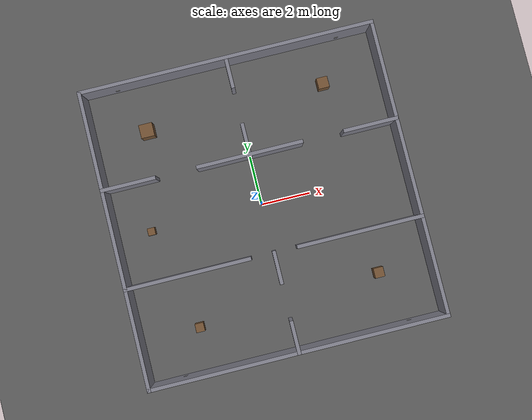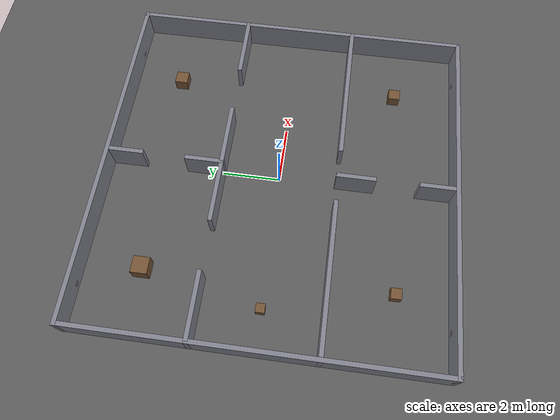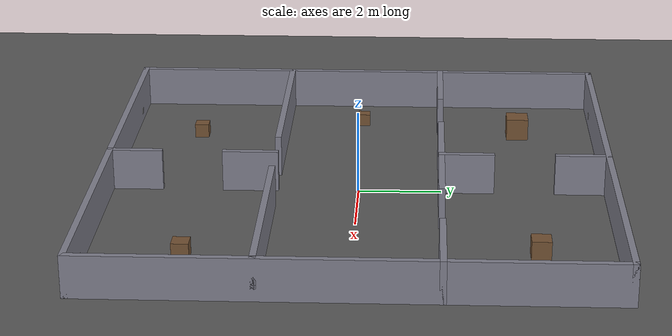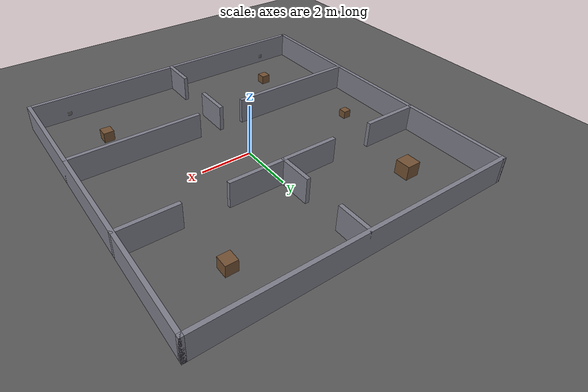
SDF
<?xml version="1.0"?>
<!-- Auto-generated by scripts/generate_rescue_arena.py — do not edit by hand. -->
<sdf version='1.8'>
    <world name='rescue_arena'>
        <physics name='1ms' type='ignored'>
            <max_step_size>0.01</max_step_size>
            <real_time_factor>1</real_time_factor>
            <real_time_update_rate>70</real_time_update_rate>
        </physics>
        <plugin name='ignition::gazebo::systems::Physics' filename='ignition-gazebo-physics-system' />
        <plugin name='ignition::gazebo::systems::UserCommands' filename='ignition-gazebo-user-commands-system' />
        <plugin name='ignition::gazebo::systems::SceneBroadcaster' filename='ignition-gazebo-scene-broadcaster-system' />
        <plugin name='ignition::gazebo::systems::Contact' filename='ignition-gazebo-contact-system' />
        <light name='sun' type='directional'>
            <cast_shadows>0</cast_shadows>
            <pose>0 0 10 0 0 0</pose>
            <diffuse>0.9 0.9 0.9 1</diffuse>
            <specular>0.1 0.1 0.1 1</specular>
            <attenuation><range>1000</range><constant>0.9</constant><linear>0.01</linear><quadratic>0.001</quadratic></attenuation>
            <direction>-0.4 0.2 -0.9</direction>
        </light>
        <gravity>0 0 -9.8</gravity>
        <scene>
            <ambient>0.5 0.5 0.5 1</ambient>
            <background>0.7 0.7 0.75 1</background>
            <shadows>0</shadows>
        </scene>
        <model name='ground_plane'>
            <static>1</static>
            <link name='link'>
                <collision name='collision'>
                    <geometry><plane><normal>0 0 1</normal><size>100 100</size></plane></geometry>
                </collision>
                <visual name='visual'>
                    <geometry><plane><normal>0 0 1</normal><size>100 100</size></plane></geometry>
                    <material><ambient>0.3 0.3 0.3 1</ambient><diffuse>0.35 0.35 0.35 1</diffuse></material>
                </visual>
            </link>
        </model>
        <model name='wall_0'>
            <static>1</static>
            <pose>0.000 6.000 0.500 0 0 0</pose>
            <link name='link'>
                <collision name='collision'>
                    <geometry><box><size>12.150 0.150 1.000</size></box></geometry>
                </collision>
                <visual name='visual'>
                    <geometry><box><size>12.150 0.150 1.000</size></box></geometry>
                    <material>
                        <ambient>0.5 0.5 0.55 1</ambient><diffuse>0.5 0.5 0.55 1</diffuse>
                    </material>
                </visual>
            </link>
        </model>
        <model name='wall_1'>
            <static>1</static>
            <pose>0.000 -6.000 0.500 0 0 0</pose>
            <link name='link'>
                <collision name='collision'>
                    <geometry><box><size>12.150 0.150 1.000</size></box></geometry>
                </collision>
                <visual name='visual'>
                    <geometry><box><size>12.150 0.150 1.000</size></box></geometry>
                    <material>
                        <ambient>0.5 0.5 0.55 1</ambient><diffuse>0.5 0.5 0.55 1</diffuse>
                    </material>
                </visual>
            </link>
        </model>
        <model name='wall_2'>
            <static>1</static>
            <pose>6.000 0.000 0.500 0 0 0</pose>
            <link name='link'>
                <collision name='collision'>
                    <geometry><box><size>0.150 12.150 1.000</size></box></geometry>
                </collision>
                <visual name='visual'>
                    <geometry><box><size>0.150 12.150 1.000</size></box></geometry>
                    <material>
                        <ambient>0.5 0.5 0.55 1</ambient><diffuse>0.5 0.5 0.55 1</diffuse>
                    </material>
                </visual>
            </link>
        </model>
        <model name='wall_3'>
            <static>1</static>
            <pose>-6.000 0.000 0.500 0 0 0</pose>
            <link name='link'>
                <collision name='collision'>
                    <geometry><box><size>0.150 12.150 1.000</size></box></geometry>
                </collision>
                <visual name='visual'>
                    <geometry><box><size>0.150 12.150 1.000</size></box></geometry>
                    <material>
                        <ambient>0.5 0.5 0.55 1</ambient><diffuse>0.5 0.5 0.55 1</diffuse>
                    </material>
                </visual>
            </link>
        </model>
        <model name='wall_4'>
            <static>1</static>
            <pose>-4.950 2.000 0.500 0 0 0</pose>
            <link name='link'>
                <collision name='collision'>
                    <geometry><box><size>2.250 0.150 1.000</size></box></geometry>
                </collision>
                <visual name='visual'>
                    <geometry><box><size>2.250 0.150 1.000</size></box></geometry>
                    <material>
                        <ambient>0.5 0.5 0.55 1</ambient><diffuse>0.5 0.5 0.55 1</diffuse>
                    </material>
                </visual>
            </link>
        </model>
        <model name='wall_5'>
            <static>1</static>
            <pose>0.000 2.000 0.500 0 0 0</pose>
            <link name='link'>
                <collision name='collision'>
                    <geometry><box><size>4.350 0.150 1.000</size></box></geometry>
                </collision>
                <visual name='visual'>
                    <geometry><box><size>4.350 0.150 1.000</size></box></geometry>
                    <material>
                        <ambient>0.5 0.5 0.55 1</ambient><diffuse>0.5 0.5 0.55 1</diffuse>
                    </material>
                </visual>
            </link>
        </model>
        <model name='wall_6'>
            <static>1</static>
            <pose>4.950 2.000 0.500 0 0 0</pose>
            <link name='link'>
                <collision name='collision'>
                    <geometry><box><size>2.250 0.150 1.000</size></box></geometry>
                </collision>
                <visual name='visual'>
                    <geometry><box><size>2.250 0.150 1.000</size></box></geometry>
                    <material>
                        <ambient>0.5 0.5 0.55 1</ambient><diffuse>0.5 0.5 0.55 1</diffuse>
                    </material>
                </visual>
            </link>
        </model>
        <model name='wall_7'>
            <static>1</static>
            <pose>-3.500 -2.000 0.500 0 0 0</pose>
            <link name='link'>
                <collision name='collision'>
                    <geometry><box><size>5.150 0.150 1.000</size></box></geometry>
                </collision>
                <visual name='visual'>
                    <geometry><box><size>5.150 0.150 1.000</size></box></geometry>
                    <material>
                        <ambient>0.5 0.5 0.55 1</ambient><diffuse>0.5 0.5 0.55 1</diffuse>
                    </material>
                </visual>
            </link>
        </model>
        <model name='wall_8'>
            <static>1</static>
            <pose>3.500 -2.000 0.500 0 0 0</pose>
            <link name='link'>
                <collision name='collision'>
                    <geometry><box><size>5.150 0.150 1.000</size></box></geometry>
                </collision>
                <visual name='visual'>
                    <geometry><box><size>5.150 0.150 1.000</size></box></geometry>
                    <material>
                        <ambient>0.5 0.5 0.55 1</ambient><diffuse>0.5 0.5 0.55 1</diffuse>
                    </material>
                </visual>
            </link>
        </model>
        <model name='wall_9'>
            <static>1</static>
            <pose>0.000 2.600 0.500 0 0 0</pose>
            <link name='link'>
                <collision name='collision'>
                    <geometry><box><size>0.150 1.350 1.000</size></box></geometry>
                </collision>
                <visual name='visual'>
                    <geometry><box><size>0.150 1.350 1.000</size></box></geometry>
                    <material>
                        <ambient>0.5 0.5 0.55 1</ambient><diffuse>0.5 0.5 0.55 1</diffuse>
                    </material>
                </visual>
            </link>
        </model>
        <model name='wall_10'>
            <static>1</static>
            <pose>0.000 5.400 0.500 0 0 0</pose>
            <link name='link'>
                <collision name='collision'>
                    <geometry><box><size>0.150 1.350 1.000</size></box></geometry>
                </collision>
                <visual name='visual'>
                    <geometry><box><size>0.150 1.350 1.000</size></box></geometry>
                    <material>
                        <ambient>0.5 0.5 0.55 1</ambient><diffuse>0.5 0.5 0.55 1</diffuse>
                    </material>
                </visual>
            </link>
        </model>
        <model name='wall_11'>
            <static>1</static>
            <pose>0.000 -5.400 0.500 0 0 0</pose>
            <link name='link'>
                <collision name='collision'>
                    <geometry><box><size>0.150 1.350 1.000</size></box></geometry>
                </collision>
                <visual name='visual'>
                    <geometry><box><size>0.150 1.350 1.000</size></box></geometry>
                    <material>
                        <ambient>0.5 0.5 0.55 1</ambient><diffuse>0.5 0.5 0.55 1</diffuse>
                    </material>
                </visual>
            </link>
        </model>
        <model name='wall_12'>
            <static>1</static>
            <pose>0.000 -2.600 0.500 0 0 0</pose>
            <link name='link'>
                <collision name='collision'>
                    <geometry><box><size>0.150 1.350 1.000</size></box></geometry>
                </collision>
                <visual name='visual'>
                    <geometry><box><size>0.150 1.350 1.000</size></box></geometry>
                    <material>
                        <ambient>0.5 0.5 0.55 1</ambient><diffuse>0.5 0.5 0.55 1</diffuse>
                    </material>
                </visual>
            </link>
        </model>
        <model name='rubble_0'>
            <static>1</static>
            <pose>3.600 4.200 0.225 0 0 0</pose>
            <link name='link'>
                <collision name='collision'>
                    <geometry><box><size>0.450 0.450 0.450</size></box></geometry>
                </collision>
                <visual name='visual'>
                    <geometry><box><size>0.450 0.450 0.450</size></box></geometry>
                    <material>
                        <ambient>0.45 0.32 0.2 1</ambient><diffuse>0.45 0.32 0.2 1</diffuse>
                    </material>
                </visual>
            </link>
        </model>
        <model name='rubble_1'>
            <static>1</static>
            <pose>-3.800 4.000 0.275 0 0 0</pose>
            <link name='link'>
                <collision name='collision'>
                    <geometry><box><size>0.550 0.550 0.550</size></box></geometry>
                </collision>
                <visual name='visual'>
                    <geometry><box><size>0.550 0.550 0.550</size></box></geometry>
                    <material>
                        <ambient>0.45 0.32 0.2 1</ambient><diffuse>0.45 0.32 0.2 1</diffuse>
                    </material>
                </visual>
            </link>
        </model>
        <model name='rubble_2'>
            <static>1</static>
            <pose>-3.600 -4.200 0.175 0 0 0</pose>
            <link name='link'>
                <collision name='collision'>
                    <geometry><box><size>0.350 0.350 0.350</size></box></geometry>
                </collision>
                <visual name='visual'>
                    <geometry><box><size>0.350 0.350 0.350</size></box></geometry>
                    <material>
                        <ambient>0.45 0.32 0.2 1</ambient><diffuse>0.45 0.32 0.2 1</diffuse>
                    </material>
                </visual>
            </link>
        </model>
        <model name='rubble_3'>
            <static>1</static>
            <pose>3.900 -3.800 0.200 0 0 0</pose>
            <link name='link'>
                <collision name='collision'>
                    <geometry><box><size>0.400 0.400 0.400</size></box></geometry>
                </collision>
                <visual name='visual'>
                    <geometry><box><size>0.400 0.400 0.400</size></box></geometry>
                    <material>
                        <ambient>0.45 0.32 0.2 1</ambient><diffuse>0.45 0.32 0.2 1</diffuse>
                    </material>
                </visual>
            </link>
        </model>
        <model name='rubble_4'>
            <static>1</static>
            <pose>-4.600 0.000 0.150 0 0 0</pose>
            <link name='link'>
                <collision name='collision'>
                    <geometry><box><size>0.300 0.300 0.300</size></box></geometry>
                </collision>
                <visual name='visual'>
                    <geometry><box><size>0.300 0.300 0.300</size></box></geometry>
                    <material>
                        <ambient>0.45 0.32 0.2 1</ambient><diffuse>0.45 0.32 0.2 1</diffuse>
                    </material>
                </visual>
            </link>
        </model>
        <!-- AprilTag victims (one per room) -->
        <include>
            <uri>model://apriltag_36h11_00</uri>
            <name>victim_0</name>
            <pose>4.6000 5.9240 0.2800 1.5708 0.0000 0.0000</pose>
        </include>
        <include>
            <uri>model://apriltag_36h11_01</uri>
            <name>victim_1</name>
            <pose>-4.6000 -5.9240 0.2800 -1.5708 0.0000 0.0000</pose>
        </include>
        <include>
            <uri>model://apriltag_36h11_02</uri>
            <name>victim_2</name>
            <pose>-4.6000 5.9240 0.2800 1.5708 0.0000 0.0000</pose>
        </include>
        <include>
            <uri>model://apriltag_36h11_03</uri>
            <name>victim_3</name>
            <pose>4.6000 -5.9240 0.2800 -1.5708 0.0000 0.0000</pose>
        </include>
    </world>
</sdf>

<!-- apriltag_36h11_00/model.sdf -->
<sdf version="1.8">
  <model name="apriltag_36h11_00">
    <static>true</static>
    <link name="link">
      <visual name="c0000">
        <pose>-0.072000 0.072000 0 0 0 0</pose>
        <geometry><box><size>0.015950 0.015950 0.002</size></box></geometry>
        <material>
          <ambient>1 1 1 1</ambient>
          <diffuse>1 1 1 1</diffuse>
          <specular>0 0 0 1</specular>
        </material>
      </visual>
      <visual name="c0001">
        <pose>-0.056000 0.072000 0 0 0 0</pose>
        <geometry><box><size>0.015950 0.015950 0.002</size></box></geometry>
        <material>
          <ambient>1 1 1 1</ambient>
          <diffuse>1 1 1 1</diffuse>
          <specular>0 0 0 1</specular>
        </material>
      </visual>
      <visual name="c0002">
        <pose>-0.040000 0.072000 0 0 0 0</pose>
        <geometry><box><size>0.015950 0.015950 0.002</size></box></geometry>
        <material>
          <ambient>1 1 1 1</ambient>
          <diffuse>1 1 1 1</diffuse>
          <specular>0 0 0 1</specular>
        </material>
      </visual>
      <visual name="c0003">
        <pose>-0.024000 0.072000 0 0 0 0</pose>
        <geometry><box><size>0.015950 0.015950 0.002</size></box></geometry>
        <material>
          <ambient>1 1 1 1</ambient>
          <diffuse>1 1 1 1</diffuse>
          <specular>0 0 0 1</specular>
        </material>
      </visual>
      <visual name="c0004">
        <pose>-0.008000 0.072000 0 0 0 0</pose>
        <geometry><box><size>0.015950 0.015950 0.002</size></box></geometry>
        <material>
          <ambient>1 1 1 1</ambient>
          <diffuse>1 1 1 1</diffuse>
          <specular>0 0 0 1</specular>
        </material>
      </visual>
      <visual name="c0005">
        <pose>0.008000 0.072000 0 0 0 0</pose>
        <geometry><box><size>0.015950 0.015950 0.002</size></box></geometry>
        <material>
          <ambient>1 1 1 1</ambient>
          <diffuse>1 1 1 1</diffuse>
          <specular>0 0 0 1</specular>
        </material>
      </visual>
      <visual name="c0006">
        <pose>0.024000 0.072000 0 0 0 0</pose>
        <geometry><box><size>0.015950 0.015950 0.002</size></box></geometry>
        <material>
          <ambient>1 1 1 1</ambient>
          <diffuse>1 1 1 1</diffuse>
          <specular>0 0 0 1</specular>
        </material>
      </visual>
      <visual name="c0007">
        <pose>0.040000 0.072000 0 0 0 0</pose>
        <geometry><box><size>0.015950 0.015950 0.002</size></box></geometry>
        <material>
          <ambient>1 1 1 1</ambient>
          <diffuse>1 1 1 1</diffuse>
          <specular>0 0 0 1</specular>
        </material>
      </visual>
      <visual name="c0008">
        <pose>0.056000 0.072000 0 0 0 0</pose>
        <geometry><box><size>0.015950 0.015950 0.002</size></box></geometry>
        <material>
          <ambient>1 1 1 1</ambient>
          <diffuse>1 1 1 1</diffuse>
          <specular>0 0 0 1</specular>
        </material>
      </visual>
      <visual name="c0009">
        <pose>0.072000 0.072000 0 0 0 0</pose>
        <geometry><box><size>0.015950 0.015950 0.002</size></box></geometry>
        <material>
          <ambient>1 1 1 1</ambient>
          <diffuse>1 1 1 1</diffuse>
          <specular>0 0 0 1</specular>
        </material>
      </visual>
      <visual name="c0100">
        <pose>-0.072000 0.056000 0 0 0 0</pose>
        <geometry><box><size>0.015950 0.015950 0.002</size></box></geometry>
        <material>
          <ambient>1 1 1 1</ambient>
          <diffuse>1 1 1 1</diffuse>
          <specular>0 0 0 1</specular>
        </material>
      </visual>
      <visual name="c0101">
        <pose>-0.056000 0.056000 0 0 0 0</pose>
        <geometry><box><size>0.015950 0.015950 0.002</size></box></geometry>
        <material>
          <ambient>0 0 0 1</ambient>
          <diffuse>0 0 0 1</diffuse>
          <specular>0 0 0 1</specular>
        </material>
      </visual>
      <visual name="c0102">
        <pose>-0.040000 0.056000 0 0 0 0</pose>
        <geometry><box><size>0.015950 0.015950 0.002</size></box></geometry>
        <material>
          <ambient>0 0 0 1</ambient>
          <diffuse>0 0 0 1</diffuse>
          <specular>0 0 0 1</specular>
        </material>
      </visual>
      <visual name="c0103">
        <pose>-0.024000 0.056000 0 0 0 0</pose>
        <geometry><box><size>0.015950 0.015950 0.002</size></box></geometry>
        <material>
          <ambient>0 0 0 1</ambient>
          <diffuse>0 0 0 1</diffuse>
          <specular>0 0 0 1</specular>
        </material>
      </visual>
      <visual name="c0104">
        <pose>-0.008000 0.056000 0 0 0 0</pose>
        <geometry><box><size>0.015950 0.015950 0.002</size></box></geometry>
        <material>
          <ambient>0 0 0 1</ambient>
          <diffuse>0 0 0 1</diffuse>
          <specular>0 0 0 1</specular>
        </material>
      </visual>
      <visual name="c0105">
        <pose>0.008000 0.056000 0 0 0 0</pose>
        <geometry><box><size>0.015950 0.015950 0.002</size></box></geometry>
        <material>
          <ambient>0 0 0 1</ambient>
          <diffuse>0 0 0 1</diffuse>
          <specular>0 0 0 1</specular>
        </material>
      </visual>
      <visual name="c0106">
        <pose>0.024000 0.056000 0 0 0 0</pose>
        <geometry><box><size>0.015950 0.015950 0.002</size></box></geometry>
        <material>
          <ambient>0 0 0 1</ambient>
          <diffuse>0 0 0 1</diffuse>
          <specular>0 0 0 1</specular>
        </material>
      </visual>
      <visual name="c0107">
        <pose>0.040000 0.056000 0 0 0 0</pose>
        <geometry><box><size>0.015950 0.015950 0.002</size></box></geometry>
        <material>
          <ambient>0 0 0 1</ambient>
          <diffuse>0 0 0 1</diffuse>
          <specular>0 0 0 1</specular>
        </material>
      </visual>
      <visual name="c0108">
        <pose>0.056000 0.056000 0 0 0 0</pose>
        <geometry><box><size>0.015950 0.015950 0.002</size></box></geometry>
        <material>
          <ambient>0 0 0 1</ambient>
          <diffuse>0 0 0 1</diffuse>
          <specular>0 0 0 1</specular>
        </material>
      </visual>
      <visual name="c0109">
        <pose>0.072000 0.056000 0 0 0 0</pose>
        <geometry><box><size>0.015950 0.015950 0.002</size></box></geometry>
        <material>
          <ambient>1 1 1 1</ambient>
          <diffuse>1 1 1 1</diffuse>
          <specular>0 0 0 1</specular>
        </material>
      </visual>
      <visual name="c0200">
        <pose>-0.072000 0.040000 0 0 0 0</pose>
        <geometry><box><size>0.015950 0.015950 0.002</size></box></geometry>
        <material>
          <ambient>1 1 1 1</ambient>
          <diffuse>1 1 1 1</diffuse>
          <specular>0 0 0 1</specular>
        </material>
      </visual>
      <visual name="c0201">
        <pose>-0.056000 0.040000 0 0 0 0</pose>
        <geometry><box><size>0.015950 0.015950 0.002</size></box></geometry>
        <material>
          <ambient>0 0 0 1</ambient>
          <diffuse>0 0 0 1</diffuse>
          <specular>0 0 0 1</specular>
        </material>
      </visual>
      <visual name="c0202">
        <pose>-0.040000 0.040000 0 0 0 0</pose>
        <geometry><box><size>0.015950 0.015950 0.002</size></box></geometry>
        <material>
          <ambient>0 0 0 1</ambient>
          <diffuse>0 0 0 1</diffuse>
          <specular>0 0 0 1</specular>
        </material>
      </visual>
      <visual name="c0203">
        <pose>-0.024000 0.040000 0 0 0 0</pose>
        <geometry><box><size>0.015950 0.015950 0.002</size></box></geometry>
        <material>
          <ambient>0 0 0 1</ambient>
          <diffuse>0 0 0 1</diffuse>
          <specular>0 0 0 1</specular>
        </material>
      </visual>
      <visual name="c0204">
        <pose>-0.008000 0.040000 0 0 0 0</pose>
        <geometry><box><size>0.015950 0.015950 0.002</size></box></geometry>
        <material>
          <ambient>1 1 1 1</ambient>
          <diffuse>1 1 1 1</diffuse>
          <specular>0 0 0 1</specular>
        </material>
      </visual>
      <visual name="c0205">
        <pose>0.008000 0.040000 0 0 0 0</pose>
        <geometry><box><size>0.015950 0.015950 0.002</size></box></geometry>
        <material>
          <ambient>0 0 0 1</ambient>
          <diffuse>0 0 0 1</diffuse>
          <specular>0 0 0 1</specular>
        </material>
      </visual>
      <visual name="c0206">
        <pose>0.024000 0.040000 0 0 0 0</pose>
        <geometry><box><size>0.015950 0.015950 0.002</size></box></geometry>
        <material>
          <ambient>0 0 0 1</ambient>
          <diffuse>0 0 0 1</diffuse>
          <specular>0 0 0 1</specular>
        </material>
      </visual>
      <visual name="c0207">
        <pose>0.040000 0.040000 0 0 0 0</pose>
        <geometry><box><size>0.015950 0.015950 0.002</size></box></geometry>
        <material>
          <ambient>0 0 0 1</ambient>
          <diffuse>0 0 0 1</diffuse>
          <specular>0 0 0 1</specular>
        </material>
      </visual>
      <visual name="c0208">
        <pose>0.056000 0.040000 0 0 0 0</pose>
        <geometry><box><size>0.015950 0.015950 0.002</size></box></geometry>
        <material>
          <ambient>0 0 0 1</ambient>
          <diffuse>0 0 0 1</diffuse>
          <specular>0 0 0 1</specular>
        </material>
      </visual>
      <visual name="c0209">
        <pose>0.072000 0.040000 0 0 0 0</pose>
        <geometry><box><size>0.015950 0.015950 0.002</size></box></geometry>
        <material>
          <ambient>1 1 1 1</ambient>
          <diffuse>1 1 1 1</diffuse>
          <specular>0 0 0 1</specular>
        </material>
      </visual>
      <visual name="c0300">
        <pose>-0.072000 0.024000 0 0 0 0</pose>
        <geometry><box><size>0.015950 0.015950 0.002</size></box></geometry>
        <material>
          <ambient>1 1 1 1</ambient>
          <diffuse>1 1 1 1</diffuse>
          <specular>0 0 0 1</specular>
        </material>
      </visual>
      <visual name="c0301">
        <pose>-0.056000 0.024000 0 0 0 0</pose>
        <geometry><box><size>0.015950 0.015950 0.002</size></box></geometry>
        <material>
          <ambient>0 0 0 1</ambient>
          <diffuse>0 0 0 1</diffuse>
          <specular>0 0 0 1</specular>
        </material>
      </visual>
      <visual name="c0302">
        <pose>-0.040000 0.024000 0 0 0 0</pose>
        <geometry><box><size>0.015950 0.015950 0.002</size></box></geometry>
        <material>
          <ambient>0 0 0 1</ambient>
          <diffuse>0 0 0 1</diffuse>
          <specular>0 0 0 1</specular>
        </material>
      </visual>
      <visual name="c0303">
        <pose>-0.024000 0.024000 0 0 0 0</pose>
        <geometry><box><size>0.015950 0.015950 0.002</size></box></geometry>
        <material>
          <ambient>1 1 1 1</ambient>
          <diffuse>1 1 1 1</diffuse>
          <specular>0 0 0 1</specular>
        </material>
      </visual>
      <visual name="c0304">
        <pose>-0.008000 0.024000 0 0 0 0</pose>
        <geometry><box><size>0.015950 0.015950 0.002</size></box></geometry>
        <material>
          <ambient>1 1 1 1</ambient>
          <diffuse>1 1 1 1</diffuse>
          <specular>0 0 0 1</specular>
        </material>
      </visual>
      <visual name="c0305">
        <pose>0.008000 0.024000 0 0 0 0</pose>
        <geometry><box><size>0.015950 0.015950 0.002</size></box></geometry>
        <material>
          <ambient>0 0 0 1</ambient>
          <diffuse>0 0 0 1</diffuse>
          <specular>0 0 0 1</specular>
        </material>
      </visual>
      <visual name="c0306">
        <pose>0.024000 0.024000 0 0 0 0</pose>
        <geometry><box><size>0.015950 0.015950 0.002</size></box></geometry>
        <material>
          <ambient>1 1 1 1</ambient>
          <diffuse>1 1 1 1</diffuse>
          <specular>0 0 0 1</specular>
        </material>
      </visual>
      <visual name="c0307">
        <pose>0.040000 0.024000 0 0 0 0</pose>
        <geometry><box><size>0.015950 0.015950 0.002</size></box></geometry>
        <material>
          <ambient>0 0 0 1</ambient>
          <diffuse>0 0 0 1</diffuse>
          <specular>0 0 0 1</specular>
        </material>
      </visual>
      <visual name="c0308">
        <pose>0.056000 0.024000 0 0 0 0</pose>
        <geometry><box><size>0.015950 0.015950 0.002</size></box></geometry>
        <material>
          <ambient>0 0 0 1</ambient>
          <diffuse>0 0 0 1</diffuse>
          <specular>0 0 0 1</specular>
        </material>
      </visual>
      <visual name="c0309">
        <pose>0.072000 0.024000 0 0 0 0</pose>
        <geometry><box><size>0.015950 0.015950 0.002</size></box></geometry>
        <material>
          <ambient>1 1 1 1</ambient>
          <diffuse>1 1 1 1</diffuse>
          <specular>0 0 0 1</specular>
        </material>
      </visual>
      <visual name="c0400">
        <pose>-0.072000 0.008000 0 0 0 0</pose>
        <geometry><box><size>0.015950 0.015950 0.002</size></box></geometry>
        <material>
          <ambient>1 1 1 1</ambient>
          <diffuse>1 1 1 1</diffuse>
          <specular>0 0 0 1</specular>
        </material>
      </visual>
      <visual name="c0401">
        <pose>-0.056000 0.008000 0 0 0 0</pose>
        <geometry><box><size>0.015950 0.015950 0.002</size></box></geometry>
        <material>
          <ambient>0 0 0 1</ambient>
          <diffuse>0 0 0 1</diffuse>
          <specular>0 0 0 1</specular>
        </material>
      </visual>
      <visual name="c0402">
        <pose>-0.040000 0.008000 0 0 0 0</pose>
        <geometry><box><size>0.015950 0.015950 0.002</size></box></geometry>
        <material>
          <ambient>0 0 0 1</ambient>
          <diffuse>0 0 0 1</diffuse>
          <specular>0 0 0 1</specular>
        </material>
      </visual>
      <visual name="c0403">
        <pose>-0.024000 0.008000 0 0 0 0</pose>
        <geometry><box><size>0.015950 0.015950 0.002</size></box></geometry>
        <material>
          <ambient>0 0 0 1</ambient>
          <diffuse>0 0 0 1</diffuse>
          <specular>0 0 0 1</specular>
        </material>
      </visual>
      <visual name="c0404">
        <pose>-0.008000 0.008000 0 0 0 0</pose>
        <geometry><box><size>0.015950 0.015950 0.002</size></box></geometry>
        <material>
          <ambient>0 0 0 1</ambient>
          <diffuse>0 0 0 1</diffuse>
          <specular>0 0 0 1</specular>
        </material>
      </visual>
      <visual name="c0405">
        <pose>0.008000 0.008000 0 0 0 0</pose>
        <geometry><box><size>0.015950 0.015950 0.002</size></box></geometry>
        <material>
          <ambient>1 1 1 1</ambient>
          <diffuse>1 1 1 1</diffuse>
          <specular>0 0 0 1</specular>
        </material>
      </visual>
      <visual name="c0406">
        <pose>0.024000 0.008000 0 0 0 0</pose>
        <geometry><box><size>0.015950 0.015950 0.002</size></box></geometry>
        <material>
          <ambient>0 0 0 1</ambient>
          <diffuse>0 0 0 1</diffuse>
          <specular>0 0 0 1</specular>
        </material>
      </visual>
      <visual name="c0407">
        <pose>0.040000 0.008000 0 0 0 0</pose>
        <geometry><box><size>0.015950 0.015950 0.002</size></box></geometry>
        <material>
          <ambient>1 1 1 1</ambient>
          <diffuse>1 1 1 1</diffuse>
          <specular>0 0 0 1</specular>
        </material>
      </visual>
      <visual name="c0408">
        <pose>0.056000 0.008000 0 0 0 0</pose>
        <geometry><box><size>0.015950 0.015950 0.002</size></box></geometry>
        <material>
          <ambient>0 0 0 1</ambient>
          <diffuse>0 0 0 1</diffuse>
          <specular>0 0 0 1</specular>
        </material>
      </visual>
      <visual name="c0409">
        <pose>0.072000 0.008000 0 0 0 0</pose>
        <geometry><box><size>0.015950 0.015950 0.002</size></box></geometry>
        <material>
          <ambient>1 1 1 1</ambient>
          <diffuse>1 1 1 1</diffuse>
          <specular>0 0 0 1</specular>
        </material>
      </visual>
      <visual name="c0500">
        <pose>-0.072000 -0.008000 0 0 0 0</pose>
        <geometry><box><size>0.015950 0.015950 0.002</size></box></geometry>
        <material>
          <ambient>1 1 1 1</ambient>
          <diffuse>1 1 1 1</diffuse>
          <specular>0 0 0 1</specular>
        </material>
      </visual>
      <visual name="c0501">
        <pose>-0.056000 -0.008000 0 0 0 0</pose>
        <geometry><box><size>0.015950 0.015950 0.002</size></box></geometry>
        <material>
          <ambient>0 0 0 1</ambient>
          <diffuse>0 0 0 1</diffuse>
          <specular>0 0 0 1</specular>
        </material>
      </visual>
      <visual name="c0502">
        <pose>-0.040000 -0.008000 0 0 0 0</pose>
        <geometry><box><size>0.015950 0.015950 0.002</size></box></geometry>
        <material>
          <ambient>0 0 0 1</ambient>
          <diffuse>0 0 0 1</diffuse>
          <specular>0 0 0 1</specular>
        </material>
      </visual>
      <visual name="c0503">
        <pose>-0.024000 -0.008000 0 0 0 0</pose>
        <geometry><box><size>0.015950 0.015950 0.002</size></box></geometry>
        <material>
          <ambient>0 0 0 1</ambient>
          <diffuse>0 0 0 1</diffuse>
          <specular>0 0 0 1</specular>
        </material>
      </visual>
      <visual name="c0504">
        <pose>-0.008000 -0.008000 0 0 0 0</pose>
        <geometry><box><size>0.015950 0.015950 0.002</size></box></geometry>
        <material>
          <ambient>0 0 0 1</ambient>
          <diffuse>0 0 0 1</diffuse>
          <specular>0 0 0 1</specular>
        </material>
      </visual>
      <visual name="c0505">
        <pose>0.008000 -0.008000 0 0 0 0</pose>
        <geometry><box><size>0.015950 0.015950 0.002</size></box></geometry>
        <material>
          <ambient>1 1 1 1</ambient>
          <diffuse>1 1 1 1</diffuse>
          <specular>0 0 0 1</specular>
        </material>
      </visual>
      <visual name="c0506">
        <pose>0.024000 -0.008000 0 0 0 0</pose>
        <geometry><box><size>0.015950 0.015950 0.002</size></box></geometry>
        <material>
          <ambient>1 1 1 1</ambient>
          <diffuse>1 1 1 1</diffuse>
          <specular>0 0 0 1</specular>
        </material>
      </visual>
      <visual name="c0507">
        <pose>0.040000 -0.008000 0 0 0 0</pose>
        <geometry><box><size>0.015950 0.015950 0.002</size></box></geometry>
        <material>
          <ambient>0 0 0 1</ambient>
          <diffuse>0 0 0 1</diffuse>
          <specular>0 0 0 1</specular>
        </material>
      </visual>
      <visual name="c0508">
        <pose>0.056000 -0.008000 0 0 0 0</pose>
        <geometry><box><size>0.015950 0.015950 0.002</size></box></geometry>
        <material>
          <ambient>0 0 0 1</ambient>
          <diffuse>0 0 0 1</diffuse>
          <specular>0 0 0 1</specular>
        </material>
      </visual>
      <visual name="c0509">
        <pose>0.072000 -0.008000 0 0 0 0</pose>
        <geometry><box><size>0.015950 0.015950 0.002</size></box></geometry>
        <material>
          <ambient>1 1 1 1</ambient>
          <diffuse>1 1 1 1</diffuse>
          <specular>0 0 0 1</specular>
        </material>
      </visual>
      <visual name="c0600">
        <pose>-0.072000 -0.024000 0 0 0 0</pose>
        <geometry><box><size>0.015950 0.015950 0.002</size></box></geometry>
        <material>
          <ambient>1 1 1 1</ambient>
          <diffuse>1 1 1 1</diffuse>
          <specular>0 0 0 1</specular>
        </material>
      </visual>
      <visual name="c0601">
        <pose>-0.056000 -0.024000 0 0 0 0</pose>
        <geometry><box><size>0.015950 0.015950 0.002</size></box></geometry>
        <material>
          <ambient>0 0 0 1</ambient>
          <diffuse>0 0 0 1</diffuse>
          <specular>0 0 0 1</specular>
        </material>
      </visual>
      <visual name="c0602">
        <pose>-0.040000 -0.024000 0 0 0 0</pose>
        <geometry><box><size>0.015950 0.015950 0.002</size></box></geometry>
        <material>
          <ambient>1 1 1 1</ambient>
          <diffuse>1 1 1 1</diffuse>
          <specular>0 0 0 1</specular>
        </material>
      </visual>
      <visual name="c0603">
        <pose>-0.024000 -0.024000 0 0 0 0</pose>
        <geometry><box><size>0.015950 0.015950 0.002</size></box></geometry>
        <material>
          <ambient>0 0 0 1</ambient>
          <diffuse>0 0 0 1</diffuse>
          <specular>0 0 0 1</specular>
        </material>
      </visual>
      <visual name="c0604">
        <pose>-0.008000 -0.024000 0 0 0 0</pose>
        <geometry><box><size>0.015950 0.015950 0.002</size></box></geometry>
        <material>
          <ambient>1 1 1 1</ambient>
          <diffuse>1 1 1 1</diffuse>
          <specular>0 0 0 1</specular>
        </material>
      </visual>
      <visual name="c0605">
        <pose>0.008000 -0.024000 0 0 0 0</pose>
        <geometry><box><size>0.015950 0.015950 0.002</size></box></geometry>
        <material>
          <ambient>1 1 1 1</ambient>
          <diffuse>1 1 1 1</diffuse>
          <specular>0 0 0 1</specular>
        </material>
      </visual>
      <visual name="c0606">
        <pose>0.024000 -0.024000 0 0 0 0</pose>
        <geometry><box><size>0.015950 0.015950 0.002</size></box></geometry>
        <material>
          <ambient>1 1 1 1</ambient>
          <diffuse>1 1 1 1</diffuse>
          <specular>0 0 0 1</specular>
        </material>
      </visual>
      <visual name="c0607">
        <pose>0.040000 -0.024000 0 0 0 0</pose>
        <geometry><box><size>0.015950 0.015950 0.002</size></box></geometry>
        <material>
          <ambient>0 0 0 1</ambient>
          <diffuse>0 0 0 1</diffuse>
          <specular>0 0 0 1</specular>
        </material>
      </visual>
      <visual name="c0608">
        <pose>0.056000 -0.024000 0 0 0 0</pose>
        <geometry><box><size>0.015950 0.015950 0.002</size></box></geometry>
        <material>
          <ambient>0 0 0 1</ambient>
          <diffuse>0 0 0 1</diffuse>
          <specular>0 0 0 1</specular>
        </material>
      </visual>
      <visual name="c0609">
        <pose>0.072000 -0.024000 0 0 0 0</pose>
        <geometry><box><size>0.015950 0.015950 0.002</size></box></geometry>
        <material>
          <ambient>1 1 1 1</ambient>
          <diffuse>1 1 1 1</diffuse>
          <specular>0 0 0 1</specular>
        </material>
      </visual>
      <visual name="c0700">
        <pose>-0.072000 -0.040000 0 0 0 0</pose>
        <geometry><box><size>0.015950 0.015950 0.002</size></box></geometry>
        <material>
          <ambient>1 1 1 1</ambient>
          <diffuse>1 1 1 1</diffuse>
          <specular>0 0 0 1</specular>
        </material>
      </visual>
      <visual name="c0701">
        <pose>-0.056000 -0.040000 0 0 0 0</pose>
        <geometry><box><size>0.015950 0.015950 0.002</size></box></geometry>
        <material>
          <ambient>0 0 0 1</ambient>
          <diffuse>0 0 0 1</diffuse>
          <specular>0 0 0 1</specular>
        </material>
      </visual>
      <visual name="c0702">
        <pose>-0.040000 -0.040000 0 0 0 0</pose>
        <geometry><box><size>0.015950 0.015950 0.002</size></box></geometry>
        <material>
          <ambient>1 1 1 1</ambient>
          <diffuse>1 1 1 1</diffuse>
          <specular>0 0 0 1</specular>
        </material>
      </visual>
      <visual name="c0703">
        <pose>-0.024000 -0.040000 0 0 0 0</pose>
        <geometry><box><size>0.015950 0.015950 0.002</size></box></geometry>
        <material>
          <ambient>0 0 0 1</ambient>
          <diffuse>0 0 0 1</diffuse>
          <specular>0 0 0 1</specular>
        </material>
      </visual>
      <visual name="c0704">
        <pose>-0.008000 -0.040000 0 0 0 0</pose>
        <geometry><box><size>0.015950 0.015950 0.002</size></box></geometry>
        <material>
          <ambient>1 1 1 1</ambient>
          <diffuse>1 1 1 1</diffuse>
          <specular>0 0 0 1</specular>
        </material>
      </visual>
      <visual name="c0705">
        <pose>0.008000 -0.040000 0 0 0 0</pose>
        <geometry><box><size>0.015950 0.015950 0.002</size></box></geometry>
        <material>
          <ambient>0 0 0 1</ambient>
          <diffuse>0 0 0 1</diffuse>
          <specular>0 0 0 1</specular>
        </material>
      </visual>
      <visual name="c0706">
        <pose>0.024000 -0.040000 0 0 0 0</pose>
        <geometry><box><size>0.015950 0.015950 0.002</size></box></geometry>
        <material>
          <ambient>1 1 1 1</ambient>
          <diffuse>1 1 1 1</diffuse>
          <specular>0 0 0 1</specular>
        </material>
      </visual>
      <visual name="c0707">
        <pose>0.040000 -0.040000 0 0 0 0</pose>
        <geometry><box><size>0.015950 0.015950 0.002</size></box></geometry>
        <material>
          <ambient>1 1 1 1</ambient>
          <diffuse>1 1 1 1</diffuse>
          <specular>0 0 0 1</specular>
        </material>
      </visual>
      <visual name="c0708">
        <pose>0.056000 -0.040000 0 0 0 0</pose>
        <geometry><box><size>0.015950 0.015950 0.002</size></box></geometry>
        <material>
          <ambient>0 0 0 1</ambient>
          <diffuse>0 0 0 1</diffuse>
          <specular>0 0 0 1</specular>
        </material>
      </visual>
      <visual name="c0709">
        <pose>0.072000 -0.040000 0 0 0 0</pose>
        <geometry><box><size>0.015950 0.015950 0.002</size></box></geometry>
        <material>
          <ambient>1 1 1 1</ambient>
          <diffuse>1 1 1 1</diffuse>
          <specular>0 0 0 1</specular>
        </material>
      </visual>
      <visual name="c0800">
        <pose>-0.072000 -0.056000 0 0 0 0</pose>
        <geometry><box><size>0.015950 0.015950 0.002</size></box></geometry>
        <material>
          <ambient>1 1 1 1</ambient>
          <diffuse>1 1 1 1</diffuse>
          <specular>0 0 0 1</specular>
        </material>
      </visual>
      <visual name="c0801">
        <pose>-0.056000 -0.056000 0 0 0 0</pose>
        <geometry><box><size>0.015950 0.015950 0.002</size></box></geometry>
        <material>
          <ambient>0 0 0 1</ambient>
          <diffuse>0 0 0 1</diffuse>
          <specular>0 0 0 1</specular>
        </material>
      </visual>
      <visual name="c0802">
        <pose>-0.040000 -0.056000 0 0 0 0</pose>
        <geometry><box><size>0.015950 0.015950 0.002</size></box></geometry>
        <material>
          <ambient>0 0 0 1</ambient>
          <diffuse>0 0 0 1</diffuse>
          <specular>0 0 0 1</specular>
        </material>
      </visual>
      <visual name="c0803">
        <pose>-0.024000 -0.056000 0 0 0 0</pose>
        <geometry><box><size>0.015950 0.015950 0.002</size></box></geometry>
        <material>
          <ambient>0 0 0 1</ambient>
          <diffuse>0 0 0 1</diffuse>
          <specular>0 0 0 1</specular>
        </material>
      </visual>
      <visual name="c0804">
        <pose>-0.008000 -0.056000 0 0 0 0</pose>
        <geometry><box><size>0.015950 0.015950 0.002</size></box></geometry>
        <material>
          <ambient>0 0 0 1</ambient>
          <diffuse>0 0 0 1</diffuse>
          <specular>0 0 0 1</specular>
        </material>
      </visual>
      <visual name="c0805">
        <pose>0.008000 -0.056000 0 0 0 0</pose>
        <geometry><box><size>0.015950 0.015950 0.002</size></box></geometry>
        <material>
          <ambient>0 0 0 1</ambient>
          <diffuse>0 0 0 1</diffuse>
          <specular>0 0 0 1</specular>
        </material>
      </visual>
      <visual name="c0806">
        <pose>0.024000 -0.056000 0 0 0 0</pose>
        <geometry><box><size>0.015950 0.015950 0.002</size></box></geometry>
        <material>
          <ambient>0 0 0 1</ambient>
          <diffuse>0 0 0 1</diffuse>
          <specular>0 0 0 1</specular>
        </material>
      </visual>
      <visual name="c0807">
        <pose>0.040000 -0.056000 0 0 0 0</pose>
        <geometry><box><size>0.015950 0.015950 0.002</size></box></geometry>
        <material>
          <ambient>0 0 0 1</ambient>
          <diffuse>0 0 0 1</diffuse>
          <specular>0 0 0 1</specular>
        </material>
      </visual>
      <visual name="c0808">
        <pose>0.056000 -0.056000 0 0 0 0</pose>
        <geometry><box><size>0.015950 0.015950 0.002</size></box></geometry>
        <material>
          <ambient>0 0 0 1</ambient>
          <diffuse>0 0 0 1</diffuse>
          <specular>0 0 0 1</specular>
        </material>
      </visual>
      <visual name="c0809">
        <pose>0.072000 -0.056000 0 0 0 0</pose>
        <geometry><box><size>0.015950 0.015950 0.002</size></box></geometry>
        <material>
          <ambient>1 1 1 1</ambient>
          <diffuse>1 1 1 1</diffuse>
          <specular>0 0 0 1</specular>
        </material>
      </visual>
      <visual name="c0900">
        <pose>-0.072000 -0.072000 0 0 0 0</pose>
        <geometry><box><size>0.015950 0.015950 0.002</size></box></geometry>
        <material>
          <ambient>1 1 1 1</ambient>
          <diffuse>1 1 1 1</diffuse>
          <specular>0 0 0 1</specular>
        </material>
      </visual>
      <visual name="c0901">
        <pose>-0.056000 -0.072000 0 0 0 0</pose>
        <geometry><box><size>0.015950 0.015950 0.002</size></box></geometry>
        <material>
          <ambient>1 1 1 1</ambient>
          <diffuse>1 1 1 1</diffuse>
          <specular>0 0 0 1</specular>
        </material>
      </visual>
      <visual name="c0902">
        <pose>-0.040000 -0.072000 0 0 0 0</pose>
        <geometry><box><size>0.015950 0.015950 0.002</size></box></geometry>
        <material>
          <ambient>1 1 1 1</ambient>
          <diffuse>1 1 1 1</diffuse>
          <specular>0 0 0 1</specular>
        </material>
      </visual>
      <visual name="c0903">
        <pose>-0.024000 -0.072000 0 0 0 0</pose>
        <geometry><box><size>0.015950 0.015950 0.002</size></box></geometry>
        <material>
          <ambient>1 1 1 1</ambient>
          <diffuse>1 1 1 1</diffuse>
          <specular>0 0 0 1</specular>
        </material>
      </visual>
      <visual name="c0904">
        <pose>-0.008000 -0.072000 0 0 0 0</pose>
        <geometry><box><size>0.015950 0.015950 0.002</size></box></geometry>
        <material>
          <ambient>1 1 1 1</ambient>
          <diffuse>1 1 1 1</diffuse>
          <specular>0 0 0 1</specular>
        </material>
      </visual>
      <visual name="c0905">
        <pose>0.008000 -0.072000 0 0 0 0</pose>
        <geometry><box><size>0.015950 0.015950 0.002</size></box></geometry>
        <material>
          <ambient>1 1 1 1</ambient>
          <diffuse>1 1 1 1</diffuse>
          <specular>0 0 0 1</specular>
        </material>
      </visual>
      <visual name="c0906">
        <pose>0.024000 -0.072000 0 0 0 0</pose>
        <geometry><box><size>0.015950 0.015950 0.002</size></box></geometry>
        <material>
          <ambient>1 1 1 1</ambient>
          <diffuse>1 1 1 1</diffuse>
          <specular>0 0 0 1</specular>
        </material>
      </visual>
      <visual name="c0907">
        <pose>0.040000 -0.072000 0 0 0 0</pose>
        <geometry><box><size>0.015950 0.015950 0.002</size></box></geometry>
        <material>
          <ambient>1 1 1 1</ambient>
          <diffuse>1 1 1 1</diffuse>
          <specular>0 0 0 1</specular>
        </material>
      </visual>
      <visual name="c0908">
        <pose>0.056000 -0.072000 0 0 0 0</pose>
        <geometry><box><size>0.015950 0.015950 0.002</size></box></geometry>
        <material>
          <ambient>1 1 1 1</ambient>
          <diffuse>1 1 1 1</diffuse>
          <specular>0 0 0 1</specular>
        </material>
      </visual>
      <visual name="c0909">
        <pose>0.072000 -0.072000 0 0 0 0</pose>
        <geometry><box><size>0.015950 0.015950 0.002</size></box></geometry>
        <material>
          <ambient>1 1 1 1</ambient>
          <diffuse>1 1 1 1</diffuse>
          <specular>0 0 0 1</specular>
        </material>
      </visual>
      <collision name="collision">
        <geometry>
          <box><size>0.16 0.16 0.003</size></box>
        </geometry>
      </collision>
    </link>
  </model>
</sdf>
